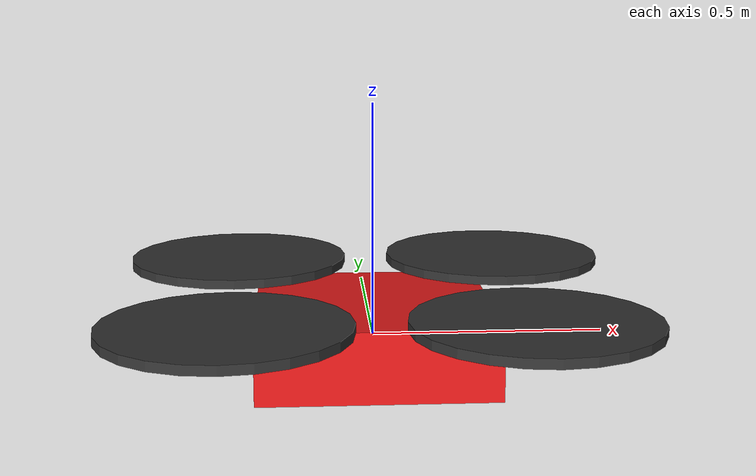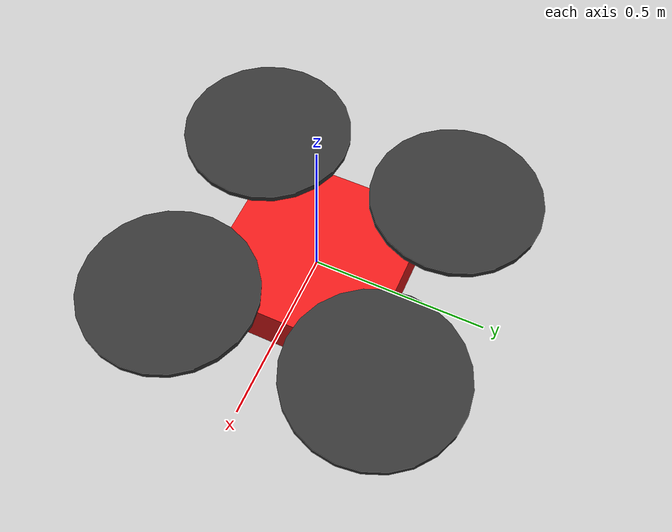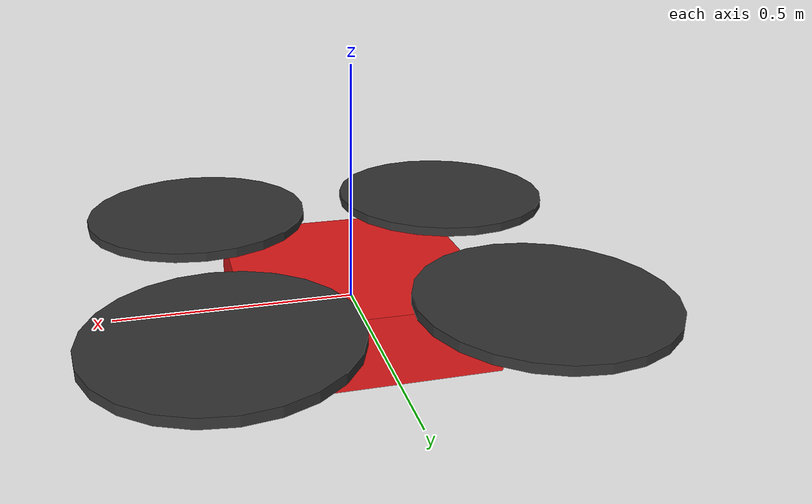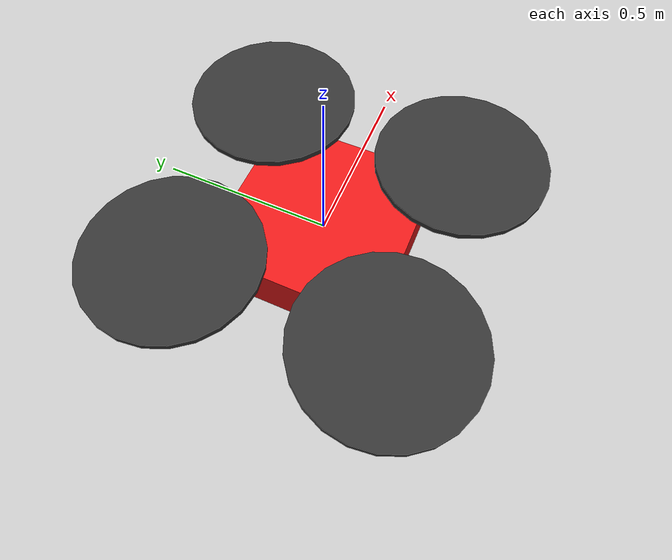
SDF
<?xml version="1.0"?>
<sdf version="1.6">
  <model name="intruder_drone">
    <!-- static: moved kinematically via /world/.../set_pose, no physics -->
    <static>true</static>
    <link name="body">
      <inertial>
        <mass>1.0</mass>
        <inertia><ixx>0.01</ixx><iyy>0.01</iyy><izz>0.01</izz></inertia>
      </inertial>
      <visual name="body_vis">
        <geometry><box><size>0.5 0.5 0.15</size></box></geometry>
        <material>
          <ambient>0.9 0.1 0.1 1</ambient>
          <diffuse>0.9 0.1 0.1 1</diffuse>
          <specular>0.5 0.1 0.1 1</specular>
        </material>
      </visual>
      <collision name="body_col">
        <geometry><box><size>0.5 0.5 0.15</size></box></geometry>
      </collision>
      <visual name="rotor_fl">
        <pose>0.3 0.3 0.1 0 0 0</pose>
        <geometry><cylinder><radius>0.25</radius><length>0.02</length></cylinder></geometry>
        <material><ambient>0.2 0.2 0.2 1</ambient><diffuse>0.2 0.2 0.2 1</diffuse></material>
      </visual>
      <visual name="rotor_fr">
        <pose>-0.3 0.3 0.1 0 0 0</pose>
        <geometry><cylinder><radius>0.25</radius><length>0.02</length></cylinder></geometry>
        <material><ambient>0.2 0.2 0.2 1</ambient><diffuse>0.2 0.2 0.2 1</diffuse></material>
      </visual>
      <visual name="rotor_rl">
        <pose>0.3 -0.3 0.1 0 0 0</pose>
        <geometry><cylinder><radius>0.25</radius><length>0.02</length></cylinder></geometry>
        <material><ambient>0.2 0.2 0.2 1</ambient><diffuse>0.2 0.2 0.2 1</diffuse></material>
      </visual>
      <visual name="rotor_rr">
        <pose>-0.3 -0.3 0.1 0 0 0</pose>
        <geometry><cylinder><radius>0.25</radius><length>0.02</length></cylinder></geometry>
        <material><ambient>0.2 0.2 0.2 1</ambient><diffuse>0.2 0.2 0.2 1</diffuse></material>
      </visual>
    </link>
  </model>
</sdf>
